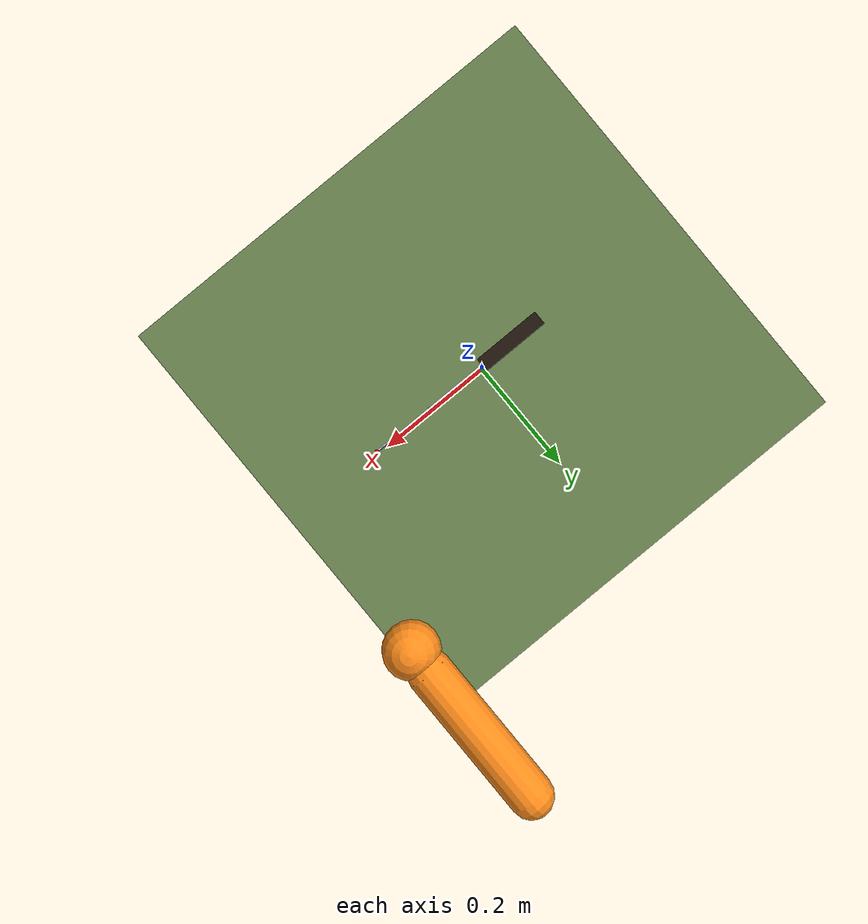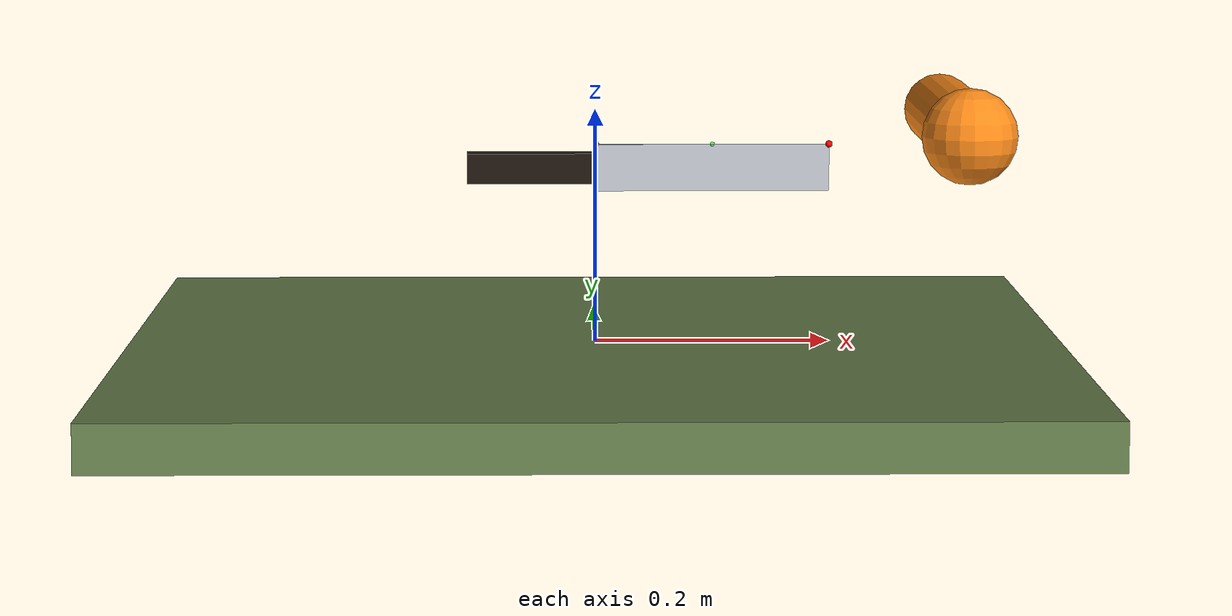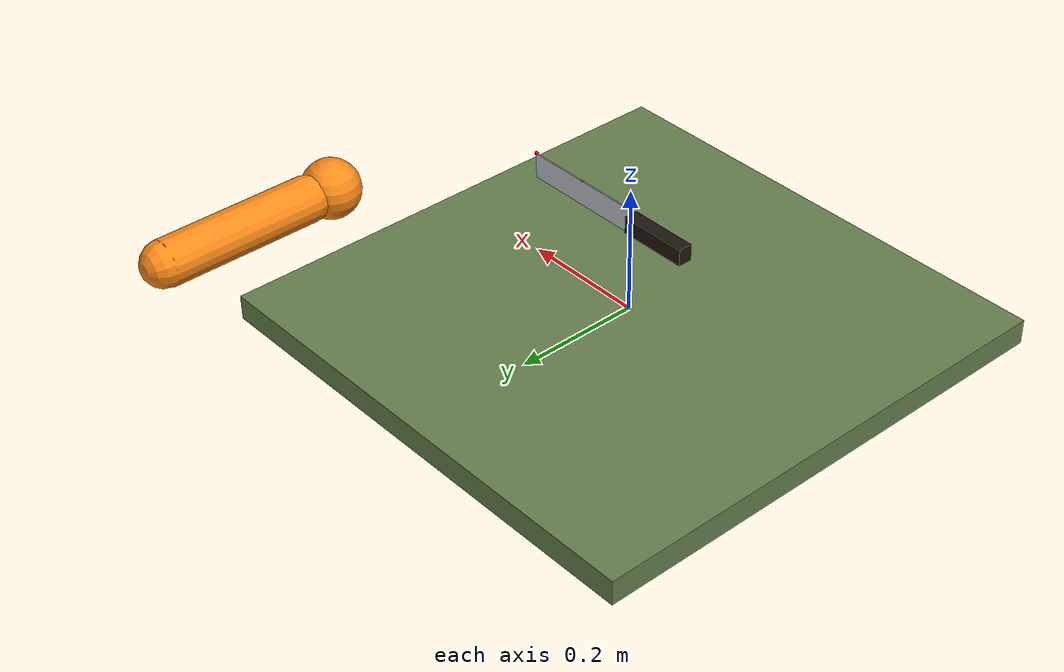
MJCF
<mujoco model="hazard_demo">
  <option timestep="0.002" gravity="0 0 0"/>
  <worldbody>
    <light pos="0 0 2"/>
    <geom name="table" type="box" size="0.4 0.4 0.02" pos="0 0 -0.02" rgba="0.4 0.5 0.3 1"/>

    <body name="knife_mocap" mocap="true" pos="0 0 0.15">
      <body name="knife" pos="0 0 0">
        <geom name="knife_handle" type="box" size="0.055 0.011 0.013" pos="-0.055 0 0" rgba="0.12 0.08 0.05 1" mass="0.08"/>
        <geom name="knife_blade" type="box" size="0.100 0.001 0.020" pos="0.100 0 0" rgba="0.75 0.77 0.80 1" mass="0.08"/>
        <site name="blade_heel" pos="0.000 0 0.020" size="0.003" rgba="1 0 0 1"/>
        <site name="blade_tip"  pos="0.200 0 0.020" size="0.003" rgba="1 0 0 1"/>
        <site name="blade_frame" pos="0.100 0 0.020" size="0.002" rgba="0 1 0 0.5"/>
      </body>
    </body>

    <body name="human_mocap" mocap="true" pos="0.35 0.3 0.15">
      <geom name="human_forearm" type="capsule" size="0.035 0.12" fromto="0 0.24 0 0 0 0" rgba="1 0.55 0.1 1"/>
      <geom name="human_hand" type="sphere" size="0.045" pos="0 -0.04 0" rgba="1 0.55 0.1 1"/>
    </body>
  </worldbody>
</mujoco>
